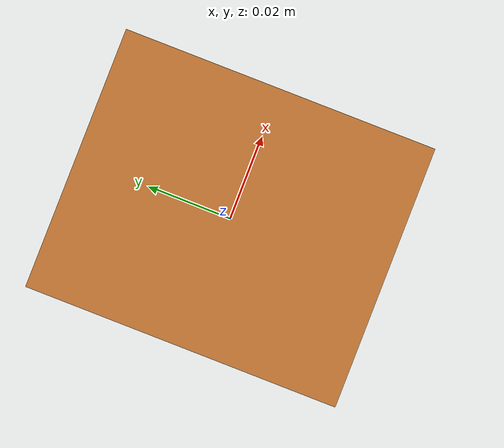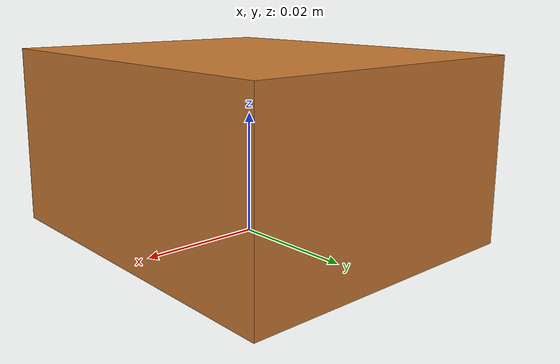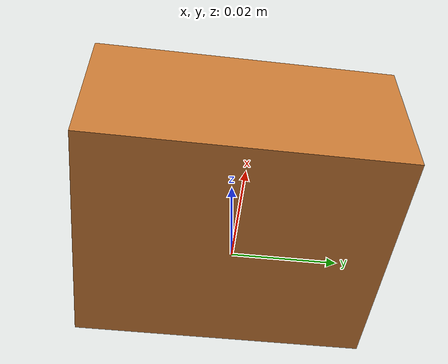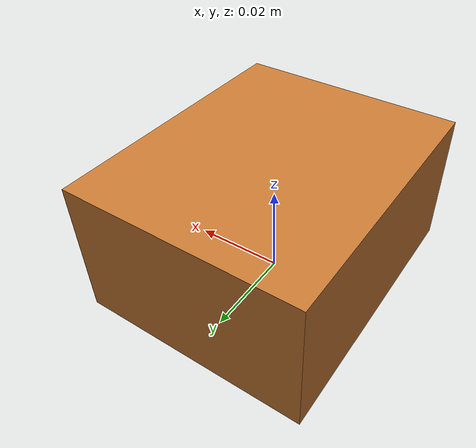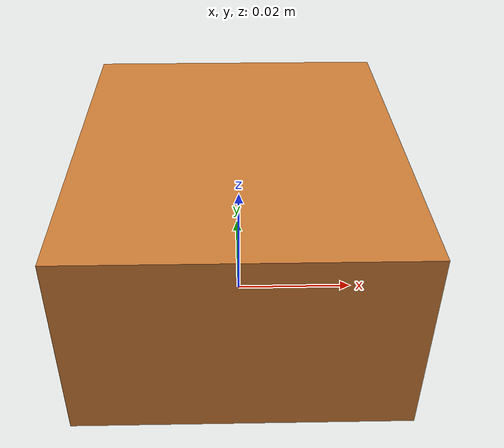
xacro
<?xml version="1.0"?>
<robot name="cardboard" xmlns:xacro="http://ros.org/wiki/xacro">
  <xacro:include filename="$(find bayes_pose)/model/common/common.xacro" />

  <xacro:arg name="id" default="00"/>

  <link name="cardboard_link_$(arg id)">
    <visual>
      <origin xyz="0 0 0" rpy="0 0 -${M_PI/2}" />
      <geometry>
        <mesh filename="package://bayes_pose/model/meshes/STL/cardboard_m.stl" />
      </geometry>
      <material name="cardboard_color">
        <color rgba="0.78 0.47 0.2 1.0"/>
      </material>
    </visual>
    <collision>
      <origin xyz="0 0 0" rpy="0 0 -${M_PI/2}" />
      <geometry>
        <mesh filename="package://bayes_pose/model/meshes/STL/cardboard_m.stl" />
      </geometry>
    </collision>
    <inertial>
      <xacro:box_inertial mass="0.1" height="0.06" width="0.06" depth="0.06">
        <origin xyz="0 0 0" rpy="0 0 -${M_PI/2}" />
      </xacro:box_inertial>
    </inertial>
  </link>

</robot>

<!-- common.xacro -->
<robot xmlns:xacro="http://ros.org/wiki/xacro">
  <xacro:property name="M_PI" value="3.14159274"/>

  <xacro:macro name="cylinder_inertial" params="mass radius length *origin">
    <xacro:insert_block name="origin"/>
  <mass value="${mass}"/>
  <inertia ixx="${((radius*radius)/4 + (length*length)/12)*mass}" ixy="0" ixz="0"
       iyy="${((radius*radius)/4 + (length*length)/12)*mass}" iyz="0"
       izz="${(mass*radius*radius)/2}" />
  </xacro:macro>

  <xacro:macro name="box_inertial" params="mass height width depth *origin">
    <xacro:insert_block name="origin"/>
  <mass value="${mass}"/>
  <inertia ixx="${(mass*(width*width+depth*depth))/12}" ixy="0" ixz="0"
       iyy="${(mass*(height*height+depth*depth))/12}" iyz="0"
       izz="${(mass*(height*height+width*width))/12}" />
  </xacro:macro>

  <!-- Macro for calculating inertial matrix-->
  <xacro:macro name="inertia_macro" params="radius height mass *origin">
  <inertial>
    <mass value="${mass}" />
    <xacro:insert_block name="origin" />
    <inertia ixx="${((1 / 4) * mass * radius * radius) + ((1 / 12) * mass * height * height)}" ixy="0.0" ixz="0.0"
      iyy="${((1 / 4) * mass * radius * radius) + ((1 / 12) * mass * height * height)}" iyz="0.0"
      izz="${(1 / 2) * mass * radius * radius}" />
  </inertial>
  </xacro:macro>

</robot>
